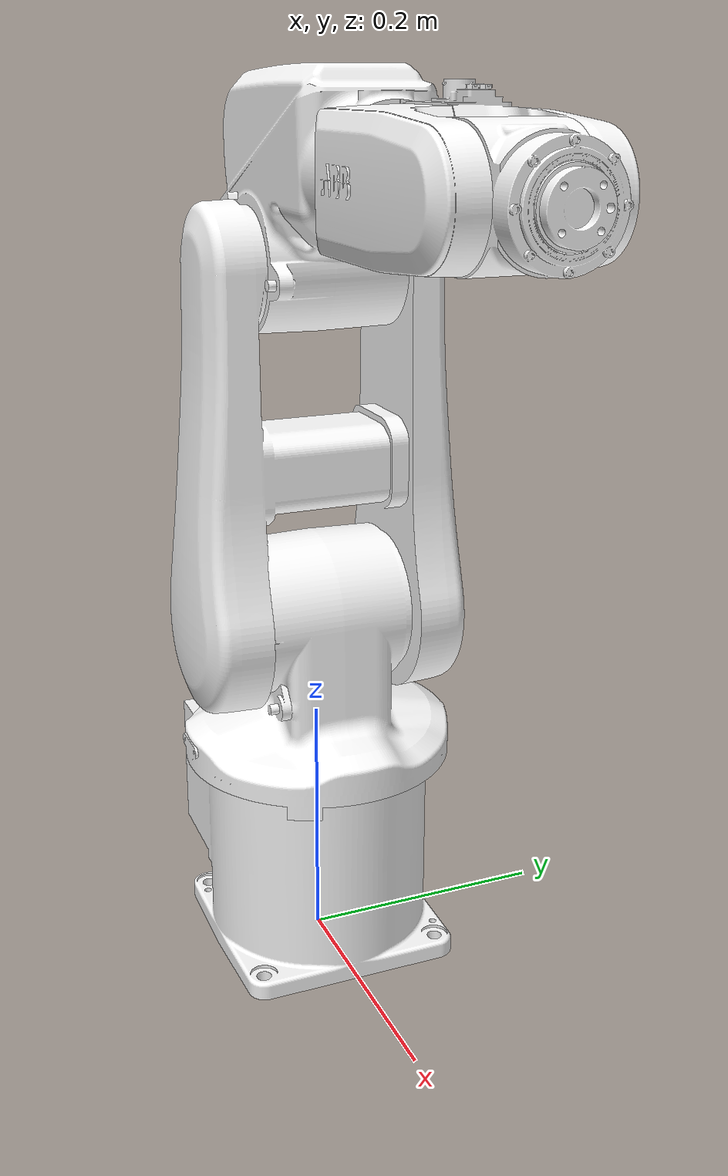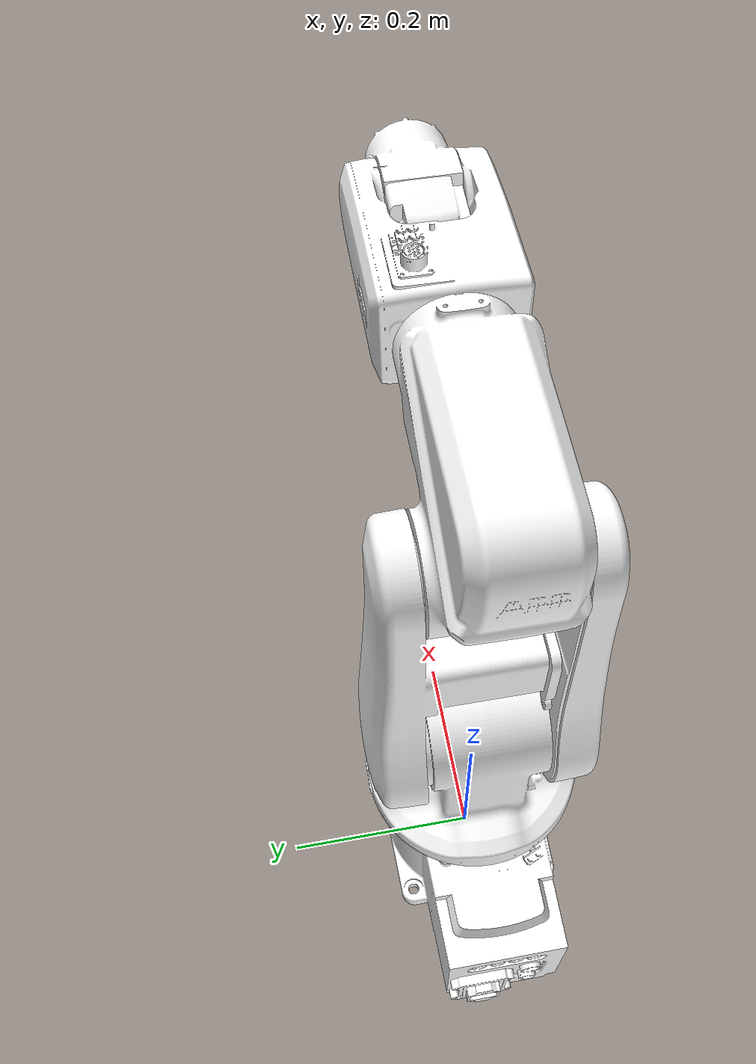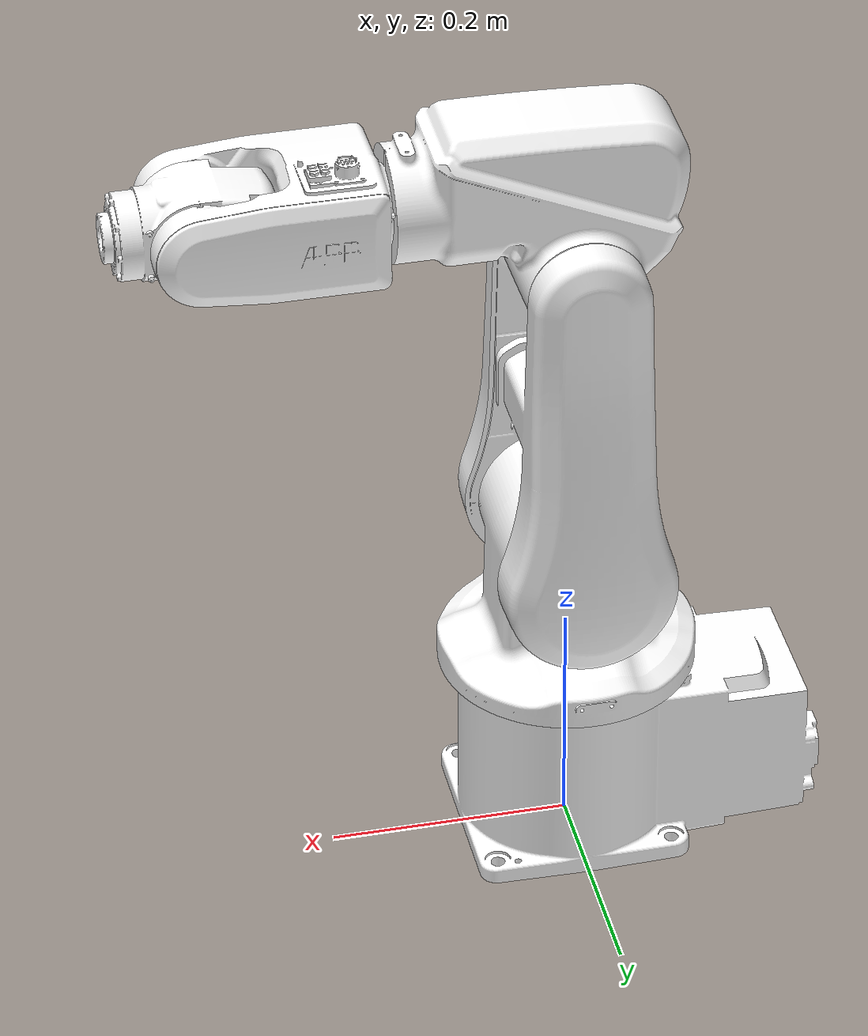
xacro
<?xml version="1.0"?>
<robot xmlns:xacro="http://www.ros.org/wiki/xacro" name="abb">

    <xacro:arg name="prefix" default=""/>
    <xacro:property name="prefix" value="$(arg prefix)"/>
    <xacro:arg name="use_fake_hardware" default="true"/>
    <xacro:property name="use_fake_hardware" value="$(arg use_fake_hardware)"/>
    <xacro:arg name="rws_ip" default="None"/>
    <xacro:property name="rws_ip" value="$(arg rws_ip)"/>
    <xacro:arg name="rws_port" default="80"/>
    <xacro:property name="rws_port" value="$(arg rws_port)"/>
    <xacro:arg name="egm_port" default="6511"/>
    <xacro:property name="egm_port" value="$(arg egm_port)"/>

    <xacro:arg name="x_trans" default="0"/>
    <xacro:property name="x_trans" value="$(arg x_trans)"/>
    <xacro:arg name="y_trans" default="0"/>
    <xacro:property name="y_trans" value="$(arg y_trans)"/>
    <xacro:arg name="z_trans" default="0"/>
    <xacro:property name="z_trans" value="$(arg z_trans)"/>
    <xacro:arg name="x_rot" default="0"/>
    <xacro:property name="x_rot" value="$(arg x_rot)"/>
    <xacro:arg name="y_rot" default="0"/>
    <xacro:property name="y_rot" value="$(arg y_rot)"/>
    <xacro:arg name="z_rot" default="0"/>
    <xacro:property name="z_rot" value="$(arg z_rot)"/>

    <xacro:arg name="velocity" default="2"/>
    <xacro:property name="velocity" value="$(arg velocity)"/>

    <!-- Robot description -->
    <xacro:include filename="$(find abb_irb_120_resource)/urdf/irb_120_macro.xacro" />

    <material name="white">
    <color rgba="1 1 1 1"/>
    </material>
    <link name="base_link"/>
    <xacro:irb_120_arm prefix="${prefix}" parent_link='base_link' xyz='${x_trans} ${y_trans} ${z_trans}' rpy='${x_rot} ${y_rot} ${z_rot}' velocity='${velocity}'/>

    <!-- ros2_control -->
    <xacro:include filename="$(find abb_irb_120_resource)/urdf/irb_120.ros2_control.xacro" />
    <xacro:irb_120_control
        name="${prefix}_ABBMultiInterfaceHardware"
        prefix="${prefix}"
        use_fake_hardware="${use_fake_hardware}"
        rws_ip="${rws_ip}"
        rws_port="${rws_port}"
        egm_port="${egm_port}"/>

</robot>

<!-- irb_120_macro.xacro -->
<robot name="abb_irb_120" xmlns:xacro="http://ros.org/wiki/xacro">

  <xacro:macro name="irb_120_arm" params="prefix parent_link xyz rpy velocity">

    <xacro:property name="l1_trans" value="${xyz}" />
    <xacro:property name="l1_rot" value="${rpy}" />
    <xacro:property name="l1_dl" value="0.0" />
    <xacro:property name="l1_ul" value="0.0" />

    <xacro:property name="l2_trans" value="0.0 0.0 0.166" />
    <xacro:property name="l2_rot" value="0.0 0.0 0.0" />
    <xacro:property name="l2_dl" value="-165" />
    <xacro:property name="l2_ul" value="165" />

    <xacro:property name="l3_trans" value="0.0 0.0 0.124" />
    <xacro:property name="l3_rot" value="-1.5707 0.0 0.0" />
    <xacro:property name="l3_dl" value="-110" />
    <xacro:property name="l3_ul" value="110" />

    <xacro:property name="l4_trans" value="0.0 -0.270 0.0" />
    <xacro:property name="l4_rot" value="0.0 0.0 -1.5707" />
    <xacro:property name="l4_dl" value="-110" />
    <xacro:property name="l4_ul" value="70" />

    <xacro:property name="l5_trans" value="0.07 0.149 0.0" />
    <xacro:property name="l5_rot" value="-1.5707 0.0 0.0" />
    <xacro:property name="l5_dl" value="-160" />
    <xacro:property name="l5_ul" value="160" />

    <xacro:property name="l6_trans" value="0.0 0.0 0.1524" />
    <xacro:property name="l6_rot" value="1.5707 0.0 0.0" />
    <xacro:property name="l6_dl" value="-120" />
    <xacro:property name="l6_ul" value="120" />

    <xacro:property name="l7_trans" value="0.0 0.06041 0.0" />
    <xacro:property name="l7_rot" value="-1.5707 0.0 0.0" />
    <xacro:property name="l7_dl" value="-400" />
    <xacro:property name="l7_ul" value="400" />

    <xacro:property name="e_trans" value="0.0 0.0 0.012" />
    <xacro:property name="e_rot" value="0.0 0.0 0.0" />
    <xacro:property name="e_dl" value="" />
    <xacro:property name="e_ul" value="0" />

    <xacro:macro name="arm_link" params="name joint_num l_trans l_rot l_dl l_ul parent joint_type mesh">
      <link name="${prefix}_${name}">
        <visual>
          <geometry>
            <mesh filename="${mesh}"/>
          </geometry>
          <material name="white"/>
        </visual>
        <collision>
          <geometry>
            <mesh filename="${mesh}"/>
          </geometry>
        </collision>
      </link>

      <joint name="${prefix}_joint_${joint_num}" type="${joint_type}">
        <parent link="${parent}"/>
        <child link="${prefix}_${name}"/>
        <axis xyz="0 0 1"/>
        <origin xyz="${l_trans}" rpy="${l_rot}"/>
        <xacro:if value="${joint_type == 'revolute'}">
            <limit effort="1000.0" lower="${l_dl * 3.141 / 180}" upper="${l_ul * 3.141 / 180}" velocity="${velocity}"/>
        </xacro:if>
      </joint>
    </xacro:macro>

    <xacro:arm_link name="link_0"
                    joint_num="0"
                    l_trans='${l1_trans}'
                    l_rot='${l1_rot}'
                    l_dl='${l1_dl}' l_ul='${l1_ul}'
                    parent="${parent_link}"
                    joint_type="fixed"
                    mesh="package://abb_irb_120_resource/meshes/Link_1.stl"/>

    <xacro:arm_link name="link_1"
                    joint_num="1"
                    l_trans='${l2_trans}'
                    l_rot='${l2_rot}'
                    l_dl='${l2_dl}' l_ul='${l2_ul}'
                    parent="${prefix}_link_0"
                    joint_type="revolute"
                    mesh="package://abb_irb_120_resource/meshes/Link_2.stl"/>

    <xacro:arm_link name="link_2"
                    joint_num="2"
                    l_trans='${l3_trans}'
                    l_rot='${l3_rot}'
                    l_dl='${l3_dl}' l_ul='${l3_ul}'
                    parent="${prefix}_link_1"
                    joint_type="revolute"
                    mesh="package://abb_irb_120_resource/meshes/Link_3.stl"/>

    <xacro:arm_link name="link_3"
                    joint_num="3"
                    l_trans='${l4_trans}'
                    l_rot='${l4_rot}'
                    l_dl='${l4_dl}' l_ul='${l4_ul}'
                    parent="${prefix}_link_2"
                    joint_type="revolute"
                    mesh="package://abb_irb_120_resource/meshes/Link_4.stl"/>

    <xacro:arm_link name="link_4"
                    joint_num="4"
                    l_trans='${l5_trans}'
                    l_rot='${l5_rot}'
                    l_dl='${l5_dl}' l_ul='${l5_ul}'
                    parent="${prefix}_link_3"
                    joint_type="revolute"
                    mesh="package://abb_irb_120_resource/meshes/Link_5.stl"/>

    <xacro:arm_link name="link_5"
                    joint_num="5"
                    l_trans='${l6_trans}'
                    l_rot='${l6_rot}'
                    l_dl='${l6_dl}' l_ul='${l6_ul}'
                    parent="${prefix}_link_4"
                    joint_type="revolute"
                    mesh="package://abb_irb_120_resource/meshes/Link_6.stl"/>

    <xacro:arm_link name="link_6"
                    joint_num="6"
                    l_trans='${l7_trans}'
                    l_rot='${l7_rot}'
                    l_dl='${l7_dl}' l_ul='${l7_ul}'
                    parent="${prefix}_link_5"
                    joint_type="revolute"
                    mesh="package://abb_irb_120_resource/meshes/Link_7.stl"/>

    <link name="${prefix}_endeffector"/>

    <joint name="${prefix}_joint_endeffector" type="fixed">
      <parent link="${prefix}_link_6"/>
      <child link="${prefix}_endeffector"/>
      <origin xyz="${e_trans}" rpy="${e_rot}"/>
    </joint>

  </xacro:macro>

</robot>
